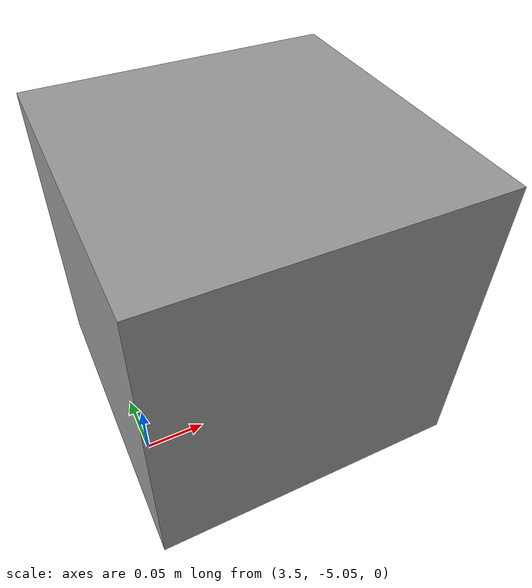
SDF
<?xml version="1.0" ?>
<sdf version="1.5">
  <model name="square_reflector">
    <static>1</static>
    <pose frame="">3.6685 -4.88865 0 0 0 0</pose>

    <link name="link">
      <inertial>
        <mass>1</mass>
        <inertia>
          <ixx>0</ixx>
          <ixy>0</ixy>
          <ixz>0</ixz>
          <iyy>0</iyy>
          <iyz>0</iyz>
          <izz>0</izz>
        </inertia>
      </inertial>

      <collision name="collision">
        <laser_retro>1000.0</laser_retro>
        <geometry>
          <box>
            <size>0.35 0.35 0.35</size>
          </box>
        </geometry>
        <max_contacts>10</max_contacts>
        <surface>
          <contact><ode/></contact>
          <bounce/>
          <friction>
            <torsional><ode/></torsional>
            <ode/>
          </friction>
        </surface>
      </collision>

      <visual name="visual">
        <geometry>
          <box>
            <size>0.35 0.35 0.35</size>
          </box>
        </geometry>
        <material>
          <script>
            <name>Gazebo/Grey</name>
            <uri>file://media/materials/scripts/gazebo.material</uri>
          </script>
          <ambient>1 1 1 1</ambient>
          <diffuse>1 1 1 1</diffuse>
          <specular>1 1 1 1</specular>
          <emissive>1 1 1 1</emissive>
        </material>
        <laser_retro>1000.0</laser_retro>
      </visual>

      <self_collide>0</self_collide>
      <kinematic>0</kinematic>
      <gravity>1</gravity>
    </link>
  </model>
</sdf>
